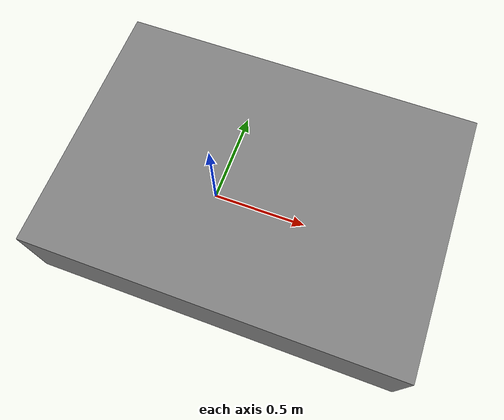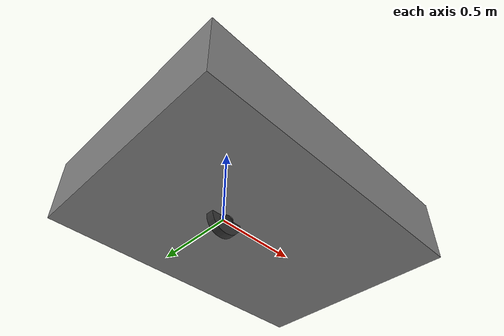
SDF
<?xml version="1.0" ?>
<sdf version="1.5">
  <model name="outdoor_cleaner">
    <pose>0.0 0.0 0.0 0.0 0.0 0.0</pose>

    <link name="base_footprint"/>

    <link name="base_link">
      <inertial>
        <pose>0.235 0 0.20 0 0 0</pose>
        <mass>100.0</mass>
        <inertia>
          <ixx>20.0</ixx><ixy>0.0</ixy><ixz>0.0</ixz>
          <iyy>30.0</iyy><iyz>0.0</iyz>
          <izz>40.0</izz>
        </inertia>
      </inertial>

      <collision name="base_collision">
        <pose>0.235 0 0.20 0 0 0</pose>
        <geometry>
          <box><size>1.83 1.30 0.40</size></box>
        </geometry>
      </collision>

      <visual name="base_visual">
        <pose>0.235 0 0.20 0 0 0</pose>
        <geometry>
          <box><size>1.83 1.30 0.40</size></box>
        </geometry>
        <material>
          <ambient>0.5 0.5 0.5 1.0</ambient>
          <diffuse>0.5 0.5 0.5 1.0</diffuse>
        </material>
      </visual>
    </link>

    <link name="imu_link">
      <sensor name="imu" type="imu">
        <always_on>true</always_on>
        <update_rate>200</update_rate>
        <imu>
          <angular_velocity>
            <x><noise type="gaussian"><mean>0.0</mean><stddev>2e-4</stddev></noise></x>
            <y><noise type="gaussian"><mean>0.0</mean><stddev>2e-4</stddev></noise></y>
            <z><noise type="gaussian"><mean>0.0</mean><stddev>2e-4</stddev></noise></z>
          </angular_velocity>
          <linear_acceleration>
            <x><noise type="gaussian"><mean>0.0</mean><stddev>1.7e-2</stddev></noise></x>
            <y><noise type="gaussian"><mean>0.0</mean><stddev>1.7e-2</stddev></noise></y>
            <z><noise type="gaussian"><mean>0.0</mean><stddev>1.7e-2</stddev></noise></z>
          </linear_acceleration>
        </imu>
        <plugin name="imu_plugin" filename="libgazebo_ros_imu_sensor.so">
          <ros>
            <remapping>~/out:=imu</remapping>
          </ros>
        </plugin>
      </sensor>
    </link>

    <!-- Front 2D lidar -->
    <link name="front_scan">
      <inertial>
        <pose>0 0 0 0 0 0</pose>
        <mass>0.2</mass>
        <inertia>
          <ixx>0.001</ixx><ixy>0.0</ixy><ixz>0.0</ixz>
          <iyy>0.001</iyy><iyz>0.0</iyz>
          <izz>0.001</izz>
        </inertia>
      </inertial>

      <collision name="front_scan_collision">
        <geometry>
          <cylinder><radius>0.04</radius><length>0.06</length></cylinder>
        </geometry>
      </collision>

      <visual name="front_scan_visual">
        <geometry>
          <cylinder><radius>0.04</radius><length>0.06</length></cylinder>
        </geometry>
        <material>
          <ambient>1.0 0.4 0.0 1.0</ambient>
          <diffuse>1.0 0.4 0.0 1.0</diffuse>
        </material>
      </visual>

      <sensor name="front_lidar" type="ray">
        <always_on>true</always_on>
        <visualize>true</visualize>
        <update_rate>10</update_rate>
        <ray>
          <scan>
            <horizontal>
              <samples>720</samples>
              <resolution>1.0</resolution>
              <min_angle>0.0</min_angle>
              <max_angle>6.283185</max_angle>
            </horizontal>
          </scan>
          <range>
            <min>0.10</min>
            <max>7.0</max>
            <resolution>0.01</resolution>
          </range>
          <noise>
            <type>gaussian</type>
            <mean>0.0</mean>
            <stddev>0.01</stddev>
          </noise>
        </ray>
        <plugin name="front_lidar_plugin" filename="libgazebo_ros_ray_sensor.so">
          <ros>
            <remapping>~/out:=front_scan</remapping>
          </ros>
          <output_type>sensor_msgs/LaserScan</output_type>
          <frame_name>front_scan</frame_name>
        </plugin>
      </sensor>
    </link>

    <!-- Back 2D lidar -->
    <link name="back_scan">
      <inertial>
        <pose>0 0 0 0 0 0</pose>
        <mass>0.2</mass>
        <inertia>
          <ixx>0.001</ixx><ixy>0.0</ixy><ixz>0.0</ixz>
          <iyy>0.001</iyy><iyz>0.0</iyz>
          <izz>0.001</izz>
        </inertia>
      </inertial>

      <collision name="back_scan_collision">
        <geometry>
          <cylinder><radius>0.04</radius><length>0.06</length></cylinder>
        </geometry>
      </collision>

      <visual name="back_scan_visual">
        <geometry>
          <cylinder><radius>0.04</radius><length>0.06</length></cylinder>
        </geometry>
        <material>
          <ambient>1.0 0.4 0.0 1.0</ambient>
          <diffuse>1.0 0.4 0.0 1.0</diffuse>
        </material>
      </visual>

      <sensor name="back_lidar" type="ray">
        <always_on>true</always_on>
        <visualize>true</visualize>
        <update_rate>10</update_rate>
        <ray>
          <scan>
            <horizontal>
              <samples>720</samples>
              <resolution>1.0</resolution>
              <min_angle>0.0</min_angle>
              <max_angle>6.283185</max_angle>
            </horizontal>
          </scan>
          <range>
            <min>0.10</min>
            <max>7.0</max>
            <resolution>0.01</resolution>
          </range>
          <noise>
            <type>gaussian</type>
            <mean>0.0</mean>
            <stddev>0.01</stddev>
          </noise>
        </ray>
        <plugin name="back_lidar_plugin" filename="libgazebo_ros_ray_sensor.so">
          <ros>
            <remapping>~/out:=back_scan</remapping>
          </ros>
          <output_type>sensor_msgs/LaserScan</output_type>
          <frame_name>back_scan</frame_name>
        </plugin>
      </sensor>
    </link>

    <!-- Left drive wheel -->
    <link name="wheel_left_link">
      <inertial>
        <pose>0 0 0 0 0 0</pose>
        <mass>2.0</mass>
        <inertia>
          <ixx>0.01</ixx><ixy>0.0</ixy><ixz>0.0</ixz>
          <iyy>0.01</iyy><iyz>0.0</iyz>
          <izz>0.01</izz>
        </inertia>
      </inertial>

      <collision name="wheel_left_collision">
        <pose>0 0 0 -1.5708 0 0</pose>
        <geometry>
          <cylinder><radius>0.10</radius><length>0.05</length></cylinder>
        </geometry>
        <surface>
          <friction>
            <ode>
              <mu>100000.0</mu>
              <mu2>100000.0</mu2>
              <fdir1>0 0 0</fdir1>
              <slip1>0.0</slip1>
              <slip2>0.0</slip2>
            </ode>
          </friction>
          <contact>
            <ode>
              <soft_cfm>0</soft_cfm>
              <soft_erp>0.2</soft_erp>
              <kp>1e+5</kp>
              <kd>1</kd>
              <max_vel>0.01</max_vel>
              <min_depth>0.001</min_depth>
            </ode>
          </contact>
        </surface>
      </collision>

      <visual name="wheel_left_visual">
        <pose>0 0 0 1.5708 0 0</pose>
        <geometry>
          <cylinder><radius>0.10</radius><length>0.05</length></cylinder>
        </geometry>
        <material>
          <ambient>0.2 0.2 0.2 1.0</ambient>
          <diffuse>0.2 0.2 0.2 1.0</diffuse>
        </material>
      </visual>
    </link>

    <!-- Right drive wheel -->
    <link name="wheel_right_link">
      <inertial>
        <pose>0 0 0 0 0 0</pose>
        <mass>2.0</mass>
        <inertia>
          <ixx>0.01</ixx><ixy>0.0</ixy><ixz>0.0</ixz>
          <iyy>0.01</iyy><iyz>0.0</iyz>
          <izz>0.01</izz>
        </inertia>
      </inertial>

      <collision name="wheel_right_collision">
        <pose>0 0 0 -1.5708 0 0</pose>
        <geometry>
          <cylinder><radius>0.10</radius><length>0.05</length></cylinder>
        </geometry>
        <surface>
          <friction>
            <ode>
              <mu>100000.0</mu>
              <mu2>100000.0</mu2>
              <fdir1>0 0 0</fdir1>
              <slip1>0.0</slip1>
              <slip2>0.0</slip2>
            </ode>
          </friction>
          <contact>
            <ode>
              <soft_cfm>0</soft_cfm>
              <soft_erp>0.2</soft_erp>
              <kp>1e+5</kp>
              <kd>1</kd>
              <max_vel>0.01</max_vel>
              <min_depth>0.001</min_depth>
            </ode>
          </contact>
        </surface>
      </collision>

      <visual name="wheel_right_visual">
        <pose>0 0 0 1.5708 0 0</pose>
        <geometry>
          <cylinder><radius>0.10</radius><length>0.05</length></cylinder>
        </geometry>
        <material>
          <ambient>0.2 0.2 0.2 1.0</ambient>
          <diffuse>0.2 0.2 0.2 1.0</diffuse>
        </material>
      </visual>
    </link>

    <!-- Front caster -->
    <link name="caster_front_link">
      <pose>0.9 0 0.0 0 0 0</pose>
      <inertial>
        <mass>0.5</mass>
        <inertia>
          <ixx>0.001</ixx><ixy>0.0</ixy><ixz>0.0</ixz>
          <iyy>0.001</iyy><iyz>0.0</iyz>
          <izz>0.001</izz>
        </inertia>
      </inertial>
      <collision name="collision">
        <geometry><sphere><radius>0.05</radius></sphere></geometry>
        <surface>
          <contact>
            <ode>
              <soft_cfm>0</soft_cfm>
              <soft_erp>0.2</soft_erp>
              <kp>1e+5</kp>
              <kd>1</kd>
              <max_vel>0.01</max_vel>
              <min_depth>0.001</min_depth>
            </ode>
          </contact>
        </surface>
      </collision>
    </link>

    <!-- Rear caster -->
    <link name="caster_back_link">
      <pose>-0.4 0 0.0 0 0 0</pose>
      <inertial>
        <mass>0.5</mass>
        <inertia>
          <ixx>0.001</ixx><ixy>0.0</ixy><ixz>0.0</ixz>
          <iyy>0.001</iyy><iyz>0.0</iyz>
          <izz>0.001</izz>
        </inertia>
      </inertial>
      <collision name="collision">
        <geometry><sphere><radius>0.05</radius></sphere></geometry>
        <surface>
          <contact>
            <ode>
              <soft_cfm>0</soft_cfm>
              <soft_erp>0.2</soft_erp>
              <kp>1e+5</kp>
              <kd>1</kd>
              <max_vel>0.01</max_vel>
              <min_depth>0.001</min_depth>
            </ode>
          </contact>
        </surface>
      </collision>
    </link>

    <!-- Camera -->
    <link name="camera_link"/>

    <link name="camera_rgb_optical_frame">
      <pose>1.153 0 0.359 -1.57 0 -1.57</pose>
      <inertial>
        <mass>0.035</mass>
        <inertia>
          <ixx>0.001</ixx><ixy>0.0</ixy><ixz>0.0</ixz>
          <iyy>0.001</iyy><iyz>0.0</iyz>
          <izz>0.001</izz>
        </inertia>
      </inertial>
      <sensor name="camera" type="camera">
        <always_on>true</always_on>
        <visualize>true</visualize>
        <update_rate>30</update_rate>
        <camera name="front_camera">
          <horizontal_fov>1.085595</horizontal_fov>
          <image>
            <width>640</width>
            <height>480</height>
            <format>R8G8B8</format>
          </image>
          <clip>
            <near>0.03</near>
            <far>100</far>
          </clip>
          <noise>
            <type>gaussian</type>
            <mean>0.0</mean>
            <stddev>0.007</stddev>
          </noise>
        </camera>
        <plugin name="camera_driver" filename="libgazebo_ros_camera.so">
          <ros>
            <remapping>image_raw:=/camera/image_raw</remapping>
            <remapping>camera_info:=/camera/camera_info</remapping>
          </ros>
        </plugin>
      </sensor>
    </link>

    <!-- Vanjee 3D lidar (VLP-16 style, publishes PointCloud2 on /vanjee/lidar) -->
    <link name="vanjee_lidar">
      <inertial>
        <mass>0.83</mass>
        <inertia>
          <ixx>0.000908</ixx><ixy>0.0</ixy><ixz>0.0</ixz>
          <iyy>0.000908</iyy><iyz>0.0</iyz>
          <izz>0.001104</izz>
        </inertia>
      </inertial>

      <collision name="collision">
        <geometry>
          <cylinder><radius>0.0516</radius><length>0.0717</length></cylinder>
        </geometry>
      </collision>

      <visual name="visual">
        <geometry>
          <cylinder><radius>0.0516</radius><length>0.0717</length></cylinder>
        </geometry>
        <material>
          <ambient>0.1 0.1 0.1 1.0</ambient>
          <diffuse>0.1 0.1 0.1 1.0</diffuse>
        </material>
      </visual>

      <sensor name="vanjee_lidar" type="ray">
        <always_on>true</always_on>
        <visualize>true</visualize>
        <update_rate>10</update_rate>
        <ray>
          <scan>
            <horizontal>
              <samples>900</samples>
              <resolution>1.0</resolution>
              <min_angle>-3.14159265</min_angle>
              <max_angle>3.14159265</max_angle>
            </horizontal>
            <vertical>
              <samples>16</samples>
              <resolution>1.0</resolution>
              <min_angle>-0.26179939</min_angle>
              <max_angle>0.26179939</max_angle>
            </vertical>
          </scan>
          <range>
            <min>0.20</min>
            <max>10.0</max>
            <resolution>0.01</resolution>
          </range>
          <noise>
            <type>gaussian</type>
            <mean>0.0</mean>
            <stddev>0.01</stddev>
          </noise>
        </ray>
        <plugin name="vanjee_lidar_plugin" filename="libgazebo_ros_ray_sensor.so">
          <ros>
            <remapping>~/out:=/vanjee/lidar</remapping>
          </ros>
          <output_type>sensor_msgs/PointCloud2</output_type>
          <frame_name>vanjee_lidar</frame_name>
        </plugin>
      </sensor>
    </link>

    <!-- Joints -->
    <joint name="base_joint" type="fixed">
      <parent>base_footprint</parent>
      <child>base_link</child>
      <pose>0.0 0.0 0.10 0 0 0</pose>
    </joint>

    <joint name="wheel_left_joint" type="revolute">
      <parent>base_link</parent>
      <child>wheel_left_link</child>
      <pose>0.0 0.211 0.0 -1.5708 0 0</pose>
      <axis>
        <xyz>0 0 1</xyz>
      </axis>
    </joint>

    <joint name="wheel_right_joint" type="revolute">
      <parent>base_link</parent>
      <child>wheel_right_link</child>
      <pose>0.0 -0.211 0.0 -1.5708 0 0</pose>
      <axis>
        <xyz>0 0 1</xyz>
      </axis>
    </joint>

    <joint name="caster_front_joint" type="ball">
      <parent>base_link</parent>
      <child>caster_front_link</child>
    </joint>

    <joint name="caster_back_joint" type="ball">
      <parent>base_link</parent>
      <child>caster_back_link</child>
    </joint>

    <joint name="imu_joint" type="fixed">
      <parent>base_link</parent>
      <child>imu_link</child>
      <pose>0.235 0 0.35 0 0 0</pose>
    </joint>

    <joint name="front_scan_joint" type="fixed">
      <parent>base_link</parent>
      <child>front_scan</child>
      <pose>1.0 0 0.45 0 0 0</pose>
    </joint>

    <joint name="back_scan_joint" type="fixed">
      <parent>base_link</parent>
      <child>back_scan</child>
      <pose>-0.6 0 0.45 0 0 3.14159265</pose>
    </joint>

    <joint name="vanjee_lidar_joint" type="fixed">
      <parent>base_link</parent>
      <child>vanjee_lidar</child>
      <pose>0.235 0 0.55 0 0 0</pose>
    </joint>

    <joint name="camera_joint" type="fixed">
      <parent>base_link</parent>
      <child>camera_link</child>
      <pose>1.15 0 0.35 0 0 0</pose>
    </joint>

    <joint name="camera_rgb_joint" type="fixed">
      <parent>camera_link</parent>
      <child>camera_rgb_optical_frame</child>
      <pose>0.003 0 0.009 0 0 0</pose>
    </joint>

    <!-- Differential drive plugin -->
    <plugin name="diff_drive" filename="libgazebo_ros_diff_drive.so">
      <ros>
        <remapping>cmd_vel:=cmd_vel</remapping>
        <remapping>odom:=odom</remapping>
      </ros>
      <update_rate>30</update_rate>

      <left_joint>wheel_left_joint</left_joint>
      <right_joint>wheel_right_joint</right_joint>

      <wheel_separation>0.422</wheel_separation>
      <wheel_diameter>0.20</wheel_diameter>

      <max_wheel_torque>200</max_wheel_torque>
      <max_wheel_acceleration>1.0</max_wheel_acceleration>

      <command_topic>cmd_vel</command_topic>

      <publish_odom>true</publish_odom>
      <publish_odom_tf>true</publish_odom_tf>
      <publish_wheel_tf>false</publish_wheel_tf>

      <odometry_topic>odom</odometry_topic>
      <odometry_frame>odom</odometry_frame>
      <robot_base_frame>base_footprint</robot_base_frame>
    </plugin>

    <!-- Joint state publisher -->
    <plugin name="joint_state" filename="libgazebo_ros_joint_state_publisher.so">
      <ros>
        <remapping>~/out:=joint_states</remapping>
      </ros>
      <update_rate>30</update_rate>
      <joint_name>wheel_left_joint</joint_name>
      <joint_name>wheel_right_joint</joint_name>
    </plugin>

  </model>
</sdf>
